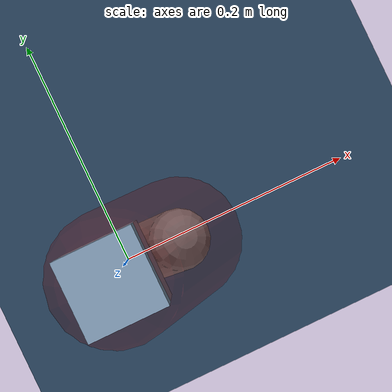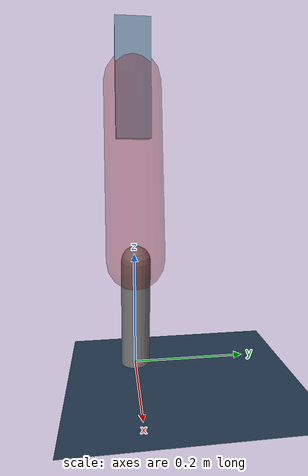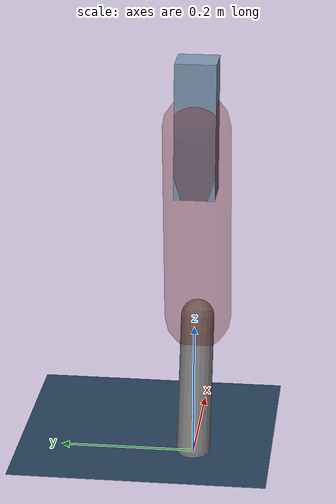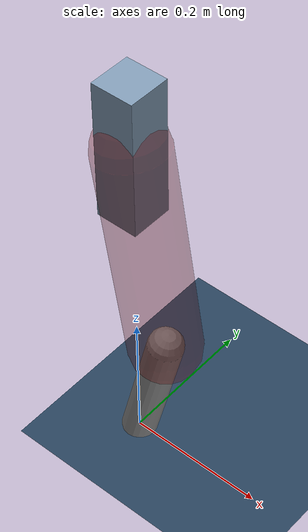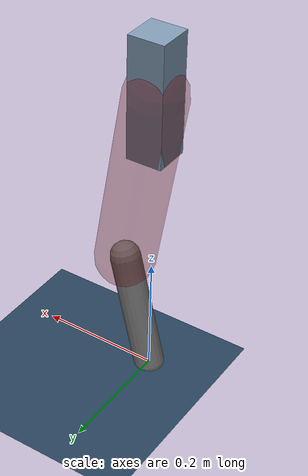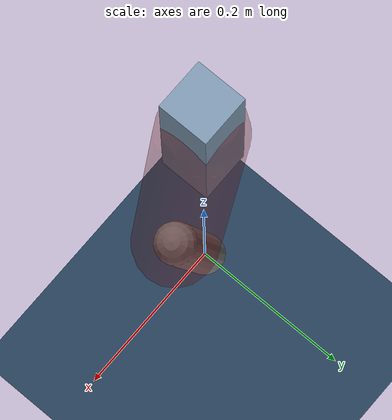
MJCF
<mujoco model="Hopper2D">
	<compiler inertiafromgeom="true" angle="radian" />
	<option timestep="0.001" integrator="implicit" cone="elliptic" solver="Newton" tolerance="1e-10" />

	<default>
		<geom contype="1" conaffinity="1" condim="3" friction="2 0.005 0.0001" solref="0.005 1" />
		<joint limited="true" damping="0.1" />
	</default>

	<asset>
		<texture name="skybox" type="skybox" builtin="gradient" rgb1=".4 .6 .8" rgb2="0 0 0" width="800" height="800" />
		<texture name="grid" type="2d" builtin="checker" rgb1=".1 .2 .3" rgb2=".2 .3 .4" width="300" height="300" mark="edge" markrgb=".2 .3 .4" />
		<material name="ground" texture="grid" texrepeat="1 1" texuniform="true" reflectance="0.1" />
		<material name="leg" rgba="0.5 0.6 0.7 1" />
	</asset>

	<worldbody>

		<geom name="floor" type="plane" size="5 5 0.25" material="ground" />

		<light directional="false" diffuse="0.8 0.8 0.8" specular="0.3 0.3 0.3" pos="0 0 2" dir="0 0 -1" />
		<light mode="targetbodycom" target="base" directional="false" diffuse="0.8 0.8 0.8" specular="0.3 0.3 0.3" pos="0 0 2" dir="0 0 -1" />

		<camera name="fixed" pos="0 -2 1" xyaxes="1 0 0 0 0 1" />
		<camera name="tracking" mode="trackcom" pos="0 -3 1" />

		<body name="root" pos="0 0 0.5059044019554956">
			<joint name="slide_x" type="slide" axis="1 0 0" range="-100 100" />
			<joint name="slide_z" type="slide" axis="0 0 1" range="0 10" />

			<body name="base" pos="0 0 0">
				<geom name="torso" type="box" size="0.03 0.03 0.1" mass="2.936" material="leg" />

				<body name="link1" pos="0 0 0" euler="0 1.4106318093953327 0">
					<joint type="hinge" axis="0 -1 0" pos="0 0 0" name="hinge1" limited="true" range="-3.14 3.14" stiffness="0" damping="0.1" />
					<geom name="thigh" type="capsule" fromto="0 0 0 0.31010813317691655 0 0" size="0.05" rgba="0.5 0 0 0.3" mass="1.0161919595776747" />

					<body name="link2" pos="0.31010813317691655 0 0" euler="0 0.40285640287016683 0">
						<joint type="hinge" axis="0 -1 0" pos="0 0 0" name="hinge2" limited="true" range="-3.14 3.14" stiffness="0" damping="0.1" />
						<geom name="shank" type="capsule" fromto="0 0 0 0.205796268778579 0 0" size="0.025" mass="0.4057370150228632" />

					</body>
				</body>
			</body>
		</body>
	</worldbody>

	<actuator>
		<motor name="torque1" joint="hinge1" ctrlrange="-70.7393186796377 70.7393186796377" ctrllimited="true" gear="1" />
		<motor name="torque2" joint="hinge2" ctrlrange="-159.69160226384156 159.69160226384156" ctrllimited="true" gear="1" />
	</actuator>
</mujoco>
